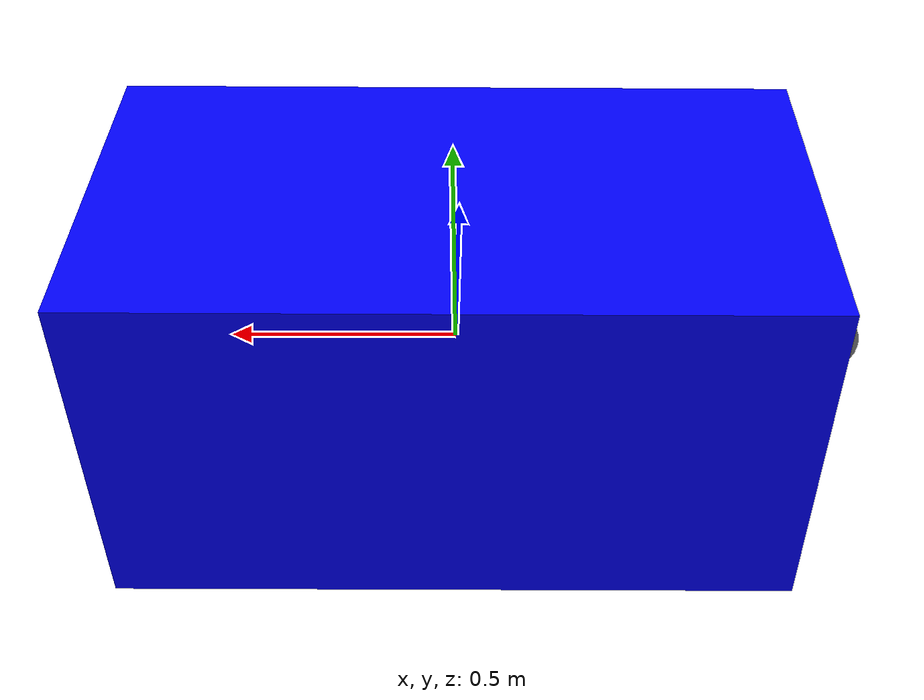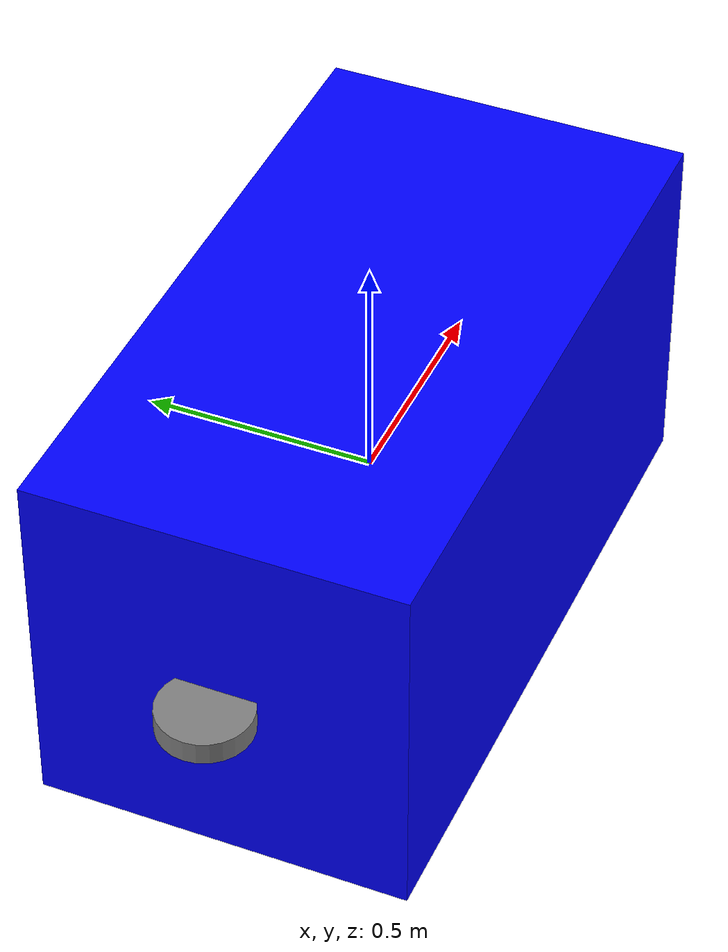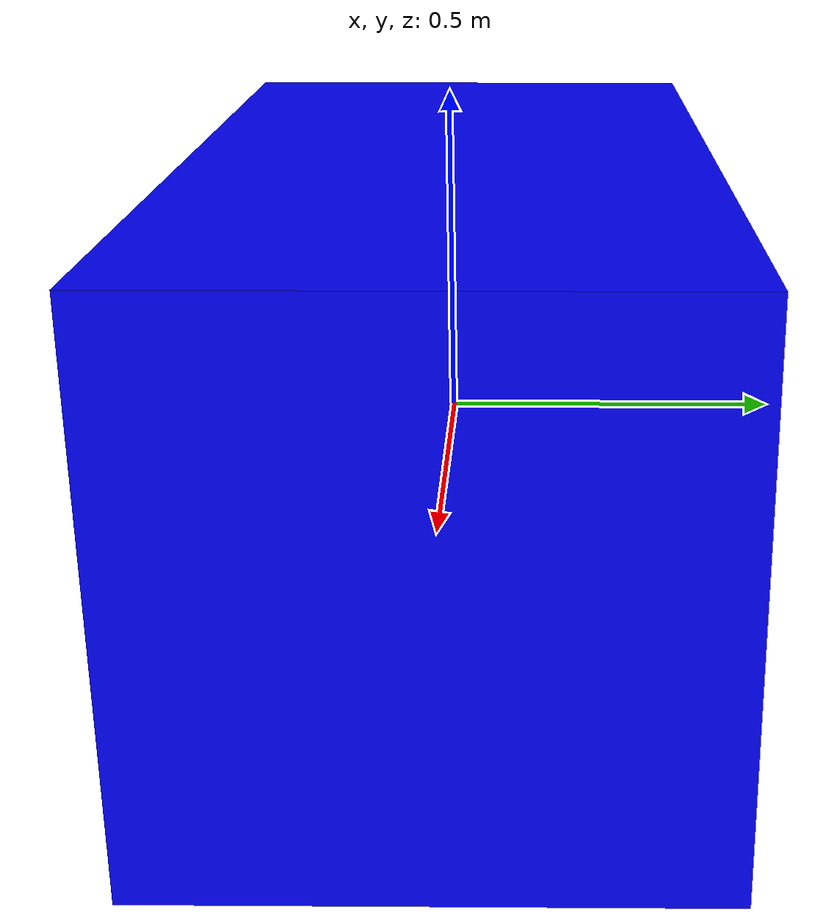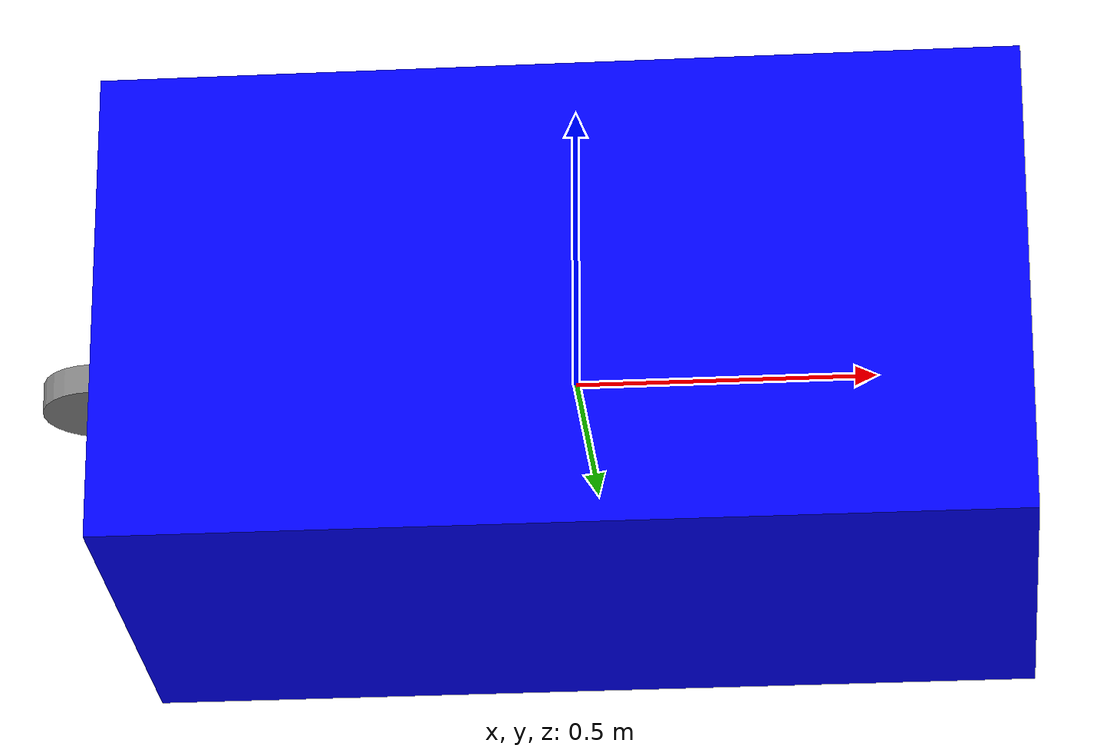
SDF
<?xml version="1.0"?>
<sdf version="1.6">
  <model name="submarine">
    <static>false</static>

    <!-- Main body -->
    <link name="base_link">
      <pose>0 0 0 0 0 0</pose>
      <inertial>
        <mass>10.0</mass>
        <inertia>
          <ixx>0.5</ixx>
          <ixy>0</ixy>
          <ixz>0</ixz>
          <iyy>0.5</iyy>
          <iyz>0</iyz>
          <izz>0.5</izz>
        </inertia>
      </inertial>

      <collision name="collision">
        <geometry>
          <box>
            <size>1.5 0.8 0.8</size>
          </box>
        </geometry>
      </collision>

      <visual name="visual">
        <geometry>
          <box>
            <size>1.5 0.8 0.8</size>
          </box>
        </geometry>
        <material>
          <ambient>0.0 0.0 1.0 1.0</ambient>
          <diffuse>0.0 0.0 1.0 1.0</diffuse>
          <specular>0.0 0.0 0.1 1.0</specular>
        </material>
      </visual>

      <!-- Add gravity compensation to simulate buoyancy -->
      <gravity>0</gravity>
    </link>

    <!-- Main propeller -->
    <link name="propeller">
      <pose>-0.8 0 0 0 0 0</pose>
      <inertial>
        <mass>0.5</mass>
        <inertia>
          <ixx>0.001</ixx>
          <ixy>0</ixy>
          <ixz>0</ixz>
          <iyy>0.001</iyy>
          <iyz>0</iyz>
          <izz>0.001</izz>
        </inertia>
      </inertial>

      <collision name="collision">
        <geometry>
          <cylinder>
            <radius>0.1</radius>
            <length>0.05</length>
          </cylinder>
        </geometry>
      </collision>

      <visual name="visual">
        <geometry>
          <cylinder>
            <radius>0.1</radius>
            <length>0.05</length>
          </cylinder>
        </geometry>
        <material>
          <ambient>0.5 0.5 0.5 1.0</ambient>
          <diffuse>0.5 0.5 0.5 1.0</diffuse>
        </material>
      </visual>
    </link>

    <!-- Joint for propeller -->
    <joint name="propeller_joint" type="revolute">
      <parent>base_link</parent>
      <child>propeller</child>
      <axis>
        <xyz>1 0 0</xyz>
        <limit>
          <lower>-1e+16</lower>
          <upper>1e+16</upper>
        </limit>
      </axis>
    </joint>

    <!-- GPS sensor -->
    <link name="gps_link">
      <pose>0 0 0.5 0 0 0</pose>
      <inertial>
        <mass>0.1</mass>
        <inertia>
          <ixx>0.0001</ixx>
          <iyy>0.0001</iyy>
          <izz>0.0001</izz>
        </inertia>
      </inertial>
      <sensor name="gps_sensor" type="gps">
        <pose>0 0 0 0 0 0</pose>
        <update_rate>10</update_rate>
        <always_on>true</always_on>
        <visualize>true</visualize>
        <!-- Add proper noise configuration -->
        <gps>
          <position_sensing>
            <horizontal>
              <noise type="gaussian">
                <mean>0.0</mean>
                <stddev>0.01</stddev>
              </noise>
            </horizontal>
            <vertical>
              <noise type="gaussian">
                <mean>0.0</mean>
                <stddev>0.01</stddev>
              </noise>
            </vertical>
          </position_sensing>
        </gps>
        <plugin name="gps_plugin" filename="libgazebo_ros_gps_sensor.so">
          <ros>
            <namespace>/submarine</namespace>
          </ros>
          <frame_name>gps_link</frame_name>
          <topic_name>gps</topic_name>
        </plugin>
      </sensor>
    </link>

    <!-- IMU sensor for orientation -->
    <link name="imu_link">
      <pose>0 0 0 0 0 0</pose>
      <inertial>
        <mass>0.1</mass>
        <inertia>
          <ixx>0.0001</ixx>
          <iyy>0.0001</iyy>
          <izz>0.0001</izz>
        </inertia>
      </inertial>
      <sensor name="imu_sensor" type="imu">
        <pose>0 0 0 0 0 0</pose>
        <update_rate>100</update_rate>
        <always_on>true</always_on>
        <visualize>true</visualize>
        <!-- Add proper noise configuration -->
        <imu>
          <angular_velocity>
            <x>
              <noise type="gaussian">
                <mean>0.0</mean>
                <stddev>0.01</stddev>
              </noise>
            </x>
            <y>
              <noise type="gaussian">
                <mean>0.0</mean>
                <stddev>0.01</stddev>
              </noise>
            </y>
            <z>
              <noise type="gaussian">
                <mean>0.0</mean>
                <stddev>0.01</stddev>
              </noise>
            </z>
          </angular_velocity>
          <linear_acceleration>
            <x>
              <noise type="gaussian">
                <mean>0.0</mean>
                <stddev>0.01</stddev>
              </noise>
            </x>
            <y>
              <noise type="gaussian">
                <mean>0.0</mean>
                <stddev>0.01</stddev>
              </noise>
            </y>
            <z>
              <noise type="gaussian">
                <mean>0.0</mean>
                <stddev>0.01</stddev>
              </noise>
            </z>
          </linear_acceleration>
        </imu>
        <plugin name="imu_plugin" filename="libgazebo_ros_imu_sensor.so">
          <ros>
            <namespace>/submarine</namespace>
          </ros>
          <frame_name>imu_link</frame_name>
          <topic_name>imu</topic_name>
        </plugin>
      </sensor>
    </link>

    <link name="depth_sensor_link">
        <sensor name="depth_sensor" type="ray">
            <pose>0 0 -0.5 0 0 0</pose> <!-- Adjust the pose relative to the submarine's body -->
            <update_rate>10</update_rate> <!-- Update rate in Hz -->
            <ray>
            <scan>
                <horizontal>
                <samples>1</samples>
                <resolution>1.0</resolution>
                <min_angle>0</min_angle>
                <max_angle>0</max_angle>
                </horizontal>
                <vertical>
                <samples>1</samples>
                <resolution>1.0</resolution>
                <min_angle>-0.1</min_angle> <!-- Small angle for vertical beam -->
                <max_angle>0.1</max_angle>
                </vertical>
            </scan>
            <range>
                <min>0.1</min>
                <max>100.0</max> <!-- Maximum depth range -->
                <resolution>0.01</resolution>
            </range>
            </ray>
            <plugin name="depth_sensor_plugin" filename="libgazebo_ros_ray_sensor.so">
            <ros>
                <namespace>/submarine</namespace>
            </ros>
            <frame_name>depth_sensor_link</frame_name>
            <topic_name>depth</topic_name>
            </plugin>
        </sensor>
    </link>

    <!-- Joint connecting body to GPS link -->
    <joint name="gps_joint" type="fixed">
      <parent>base_link</parent>
      <child>gps_link</child>
    </joint>

    <!-- Joint connecting body to IMU link -->
    <joint name="imu_joint" type="fixed">
      <parent>base_link</parent>
      <child>imu_link</child>
    </joint>

    <!-- Joint connecting body to depth sensor -->
    <joint name="depth_sensor_joint" type="fixed">
        <parent>base_link</parent> <!-- Changed from 'body' to 'base_link' -->
        <child>depth_sensor_link</child>
        <pose>0 0 -0.5 0 0 0</pose> <!-- Adjust the pose as needed -->
    </joint>
  </model>
</sdf>
